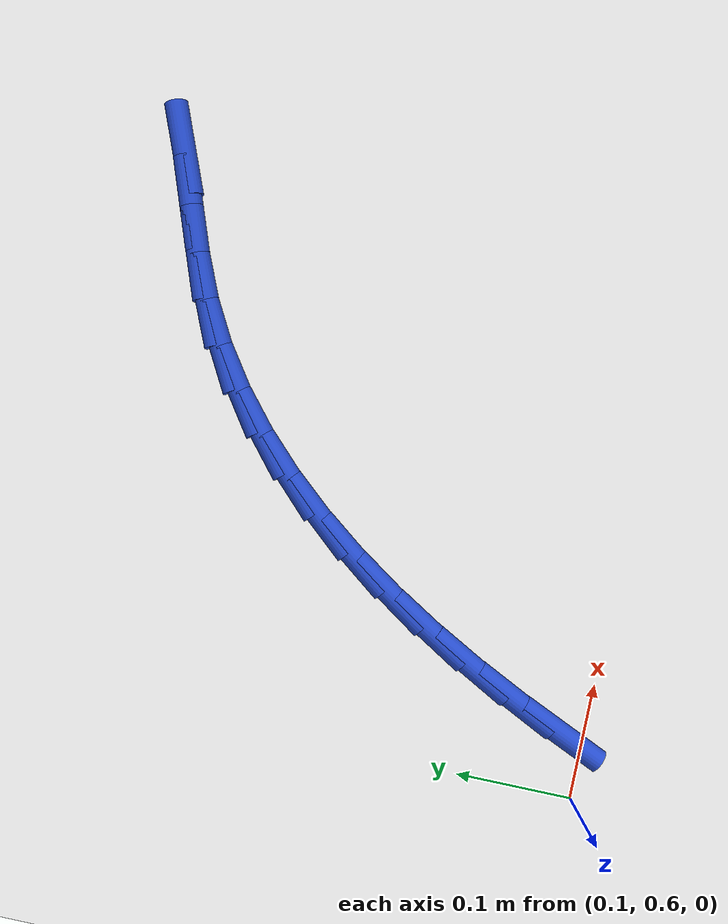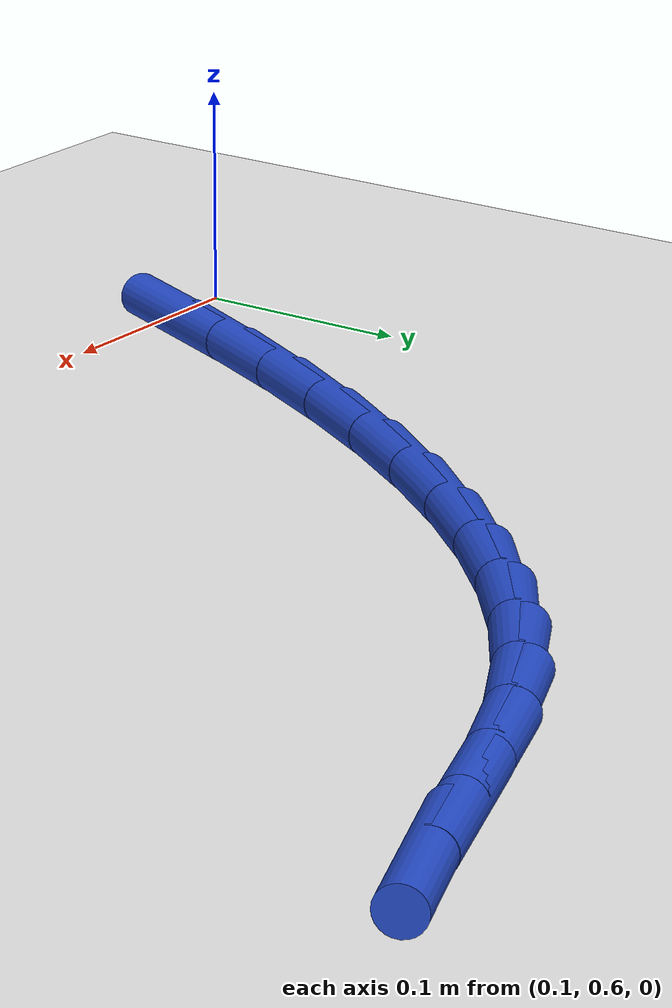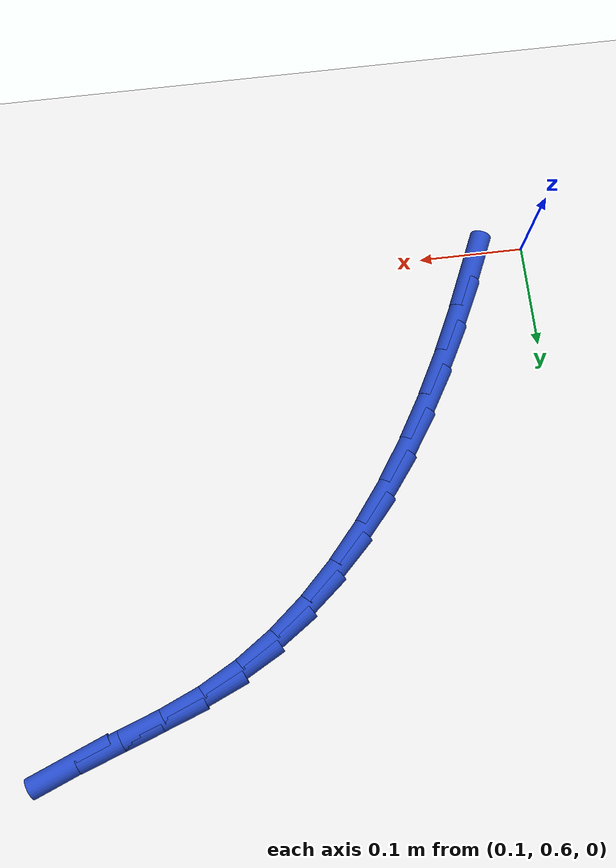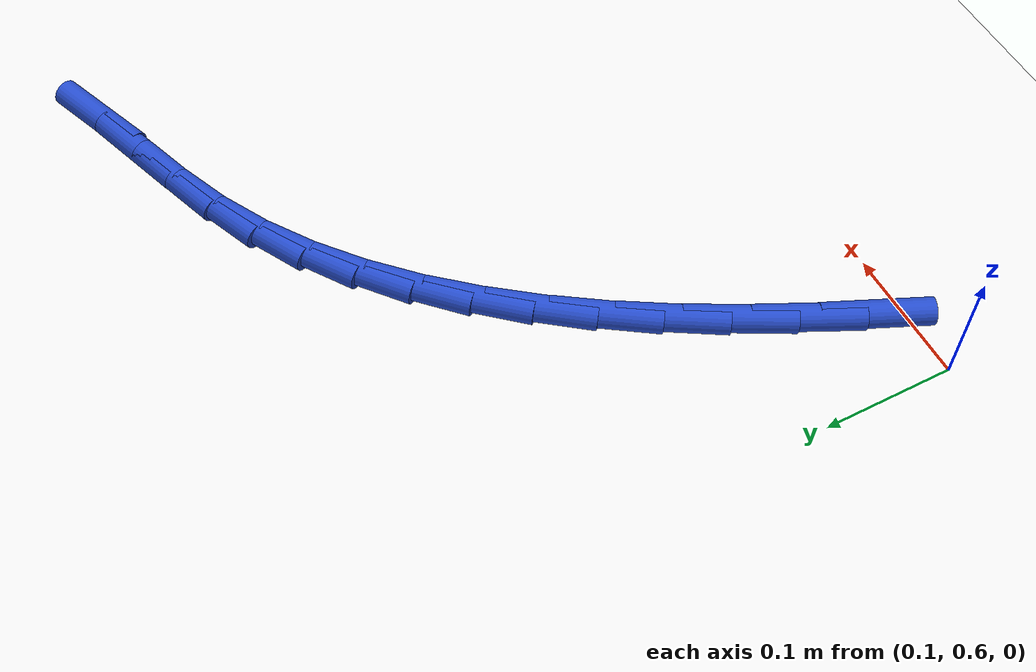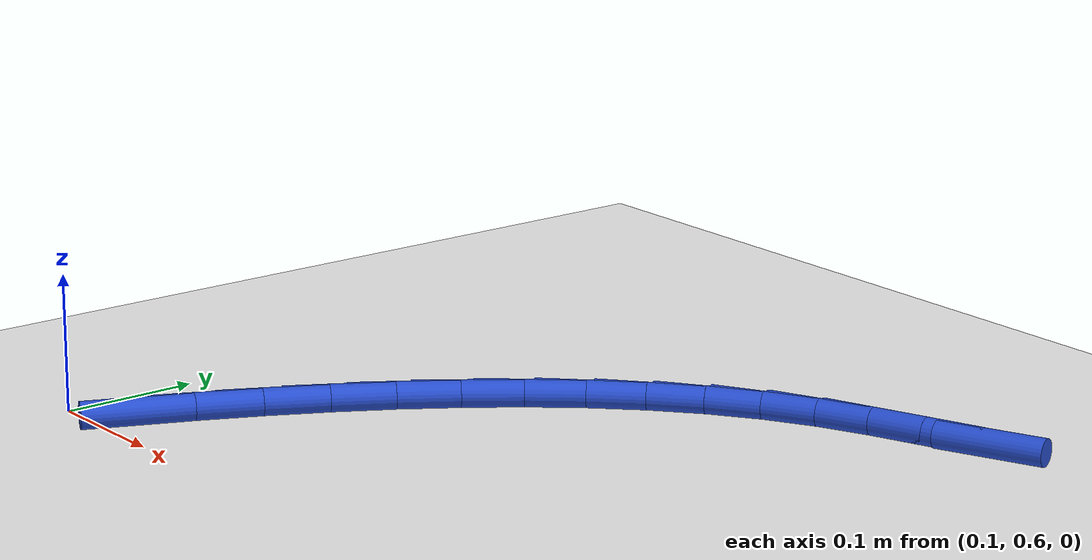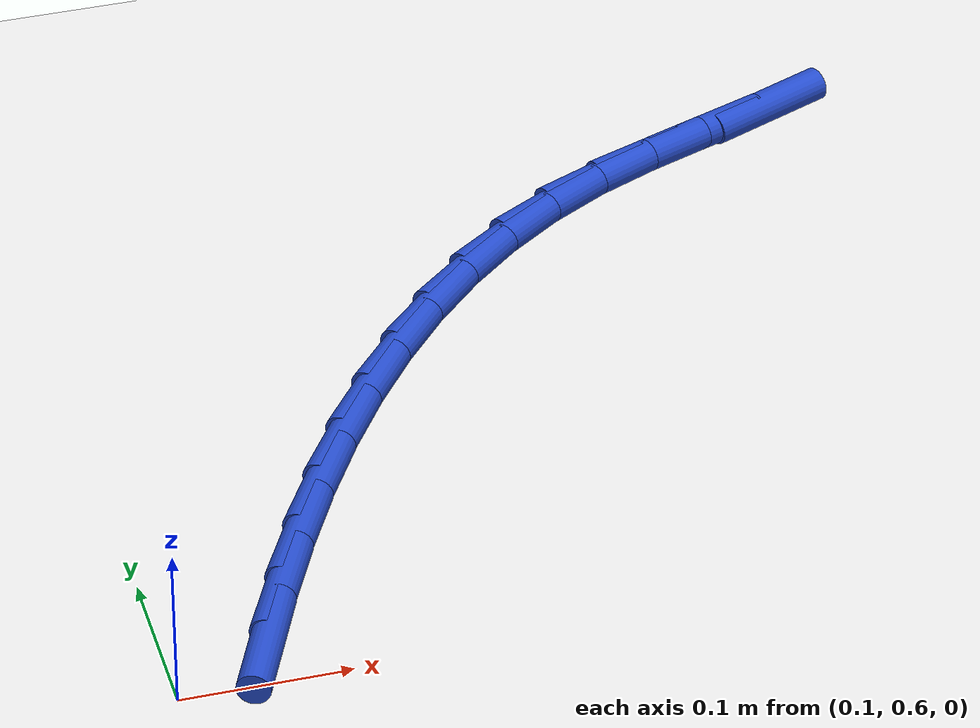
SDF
<sdf version="1.6">
 <world name="default">
  <model name="ground_plane">
   <static>1</static>
   <link name="link">
    <collision name="collision">
     <geometry><plane><normal>0 0 1</normal><size>100 100</size></plane></geometry>
     <surface><friction><ode><mu>100</mu><mu2>50</mu2></ode></friction></surface>
    </collision>
    <visual name="visual">
     <cast_shadows>0</cast_shadows>
     <geometry><plane><normal>0 0 1</normal><size>100 100</size></plane></geometry>
     <material>
      <script><uri>file://media/materials/scripts/gazebo.material</uri><name>Gazebo/WhiteGlow</name></script>
     </material>
    </visual>
   </link>
  </model>
  <model name="line">
   <link name="link_14">
    <pose>0.1557032932175975 0.6224745213254694 0.01 0 1.57 1.1550694259014196</pose>
    <collision name="collision">
     <geometry><cylinder><radius>0.01</radius><length>0.08</length></cylinder></geometry>
    </collision>
    <visual name="visual">
     <material>
      <script><name>Gazebo/Blue</name><uri>file://media/materials/scripts/gazebo.material</uri></script>
     </material>
     <geometry><cylinder><radius>0.01</radius><length>0.08</length></cylinder></geometry>
    </visual>
   </link>
   <link name="link_15">
    <pose>0.175060446691376 0.666322853550728 0.01 0 1.57 1.1200868528925287</pose>
    <collision name="collision">
     <geometry><cylinder><radius>0.01</radius><length>0.08</length></cylinder></geometry>
    </collision>
    <visual name="visual">
     <material>
      <script><name>Gazebo/Blue</name><uri>file://media/materials/scripts/gazebo.material</uri></script>
     </material>
     <geometry><cylinder><radius>0.01</radius><length>0.08</length></cylinder></geometry>
    </visual>
   </link>
   <link name="link_16">
    <pose>0.1956940704689749 0.7089604398861165 0.01 0 1.57 1.080232874510247</pose>
    <collision name="collision">
     <geometry><cylinder><radius>0.01</radius><length>0.08</length></cylinder></geometry>
    </collision>
    <visual name="visual">
     <material>
      <script><name>Gazebo/Blue</name><uri>file://media/materials/scripts/gazebo.material</uri></script>
     </material>
     <geometry><cylinder><radius>0.01</radius><length>0.08</length></cylinder></geometry>
    </visual>
   </link>
   <link name="link_17">
    <pose>0.21767694718571245 0.7501182340592825 0.01 0 1.57 1.034875441462953</pose>
    <collision name="collision">
     <geometry><cylinder><radius>0.01</radius><length>0.08</length></cylinder></geometry>
    </collision>
    <visual name="visual">
     <material>
      <script><name>Gazebo/Blue</name><uri>file://media/materials/scripts/gazebo.material</uri></script>
     </material>
     <geometry><cylinder><radius>0.01</radius><length>0.08</length></cylinder></geometry>
    </visual>
   </link>
   <link name="link_18">
    <pose>0.2410818594769067 0.7895271897978733 0.01 0 1.57 0.9833058500837129</pose>
    <collision name="collision">
     <geometry><cylinder><radius>0.01</radius><length>0.08</length></cylinder></geometry>
    </collision>
    <visual name="visual">
     <material>
      <script><name>Gazebo/Blue</name><uri>file://media/materials/scripts/gazebo.material</uri></script>
     </material>
     <geometry><cylinder><radius>0.01</radius><length>0.08</length></cylinder></geometry>
    </visual>
   </link>
   <link name="link_19">
    <pose>0.2659815899778757 0.8269182608295357 0.01 0 1.57 0.924761746532312</pose>
    <collision name="collision">
     <geometry><cylinder><radius>0.01</radius><length>0.08</length></cylinder></geometry>
    </collision>
    <visual name="visual">
     <material>
      <script><name>Gazebo/Blue</name><uri>file://media/materials/scripts/gazebo.material</uri></script>
     </material>
     <geometry><cylinder><radius>0.01</radius><length>0.08</length></cylinder></geometry>
    </visual>
   </link>
   <link name="link_20">
    <pose>0.2924489213239375 0.8620224008819166 0.01 0 1.57 0.8584750192438121</pose>
    <collision name="collision">
     <geometry><cylinder><radius>0.01</radius><length>0.08</length></cylinder></geometry>
    </collision>
    <visual name="visual">
     <material>
      <script><name>Gazebo/Blue</name><uri>file://media/materials/scripts/gazebo.material</uri></script>
     </material>
     <geometry><cylinder><radius>0.01</radius><length>0.08</length></cylinder></geometry>
    </visual>
   </link>
   <link name="link_21">
    <pose>0.32055663615041013 0.8945705636826639 0.01 0 1.57 0.7837566622476606</pose>
    <collision name="collision">
     <geometry><cylinder><radius>0.01</radius><length>0.08</length></cylinder></geometry>
    </collision>
    <visual name="visual">
     <material>
      <script><name>Gazebo/Blue</name><uri>file://media/materials/scripts/gazebo.material</uri></script>
     </material>
     <geometry><cylinder><radius>0.01</radius><length>0.08</length></cylinder></geometry>
    </visual>
   </link>
   <link name="link_22">
    <pose>0.3503775170926119 0.924293702959424 0.01 0 1.57 0.7001296184476679</pose>
    <collision name="collision">
     <geometry><cylinder><radius>0.01</radius><length>0.08</length></cylinder></geometry>
    </collision>
    <visual name="visual">
     <material>
      <script><name>Gazebo/Blue</name><uri>file://media/materials/scripts/gazebo.material</uri></script>
     </material>
     <geometry><cylinder><radius>0.01</radius><length>0.08</length></cylinder></geometry>
    </visual>
   </link>
   <link name="link_23">
    <pose>0.3819843467858606 0.9509227724398444 0.01 0 1.57 0.6075112259678378</pose>
    <collision name="collision">
     <geometry><cylinder><radius>0.01</radius><length>0.08</length></cylinder></geometry>
    </collision>
    <visual name="visual">
     <material>
      <script><name>Gazebo/Blue</name><uri>file://media/materials/scripts/gazebo.material</uri></script>
     </material>
     <geometry><cylinder><radius>0.01</radius><length>0.08</length></cylinder></geometry>
    </visual>
   </link>
   <link name="link_24">
    <pose>0.4154499078654743 0.9741887258515718 0.01 0 1.57 0.5064236134487557</pose>
    <collision name="collision">
     <geometry><cylinder><radius>0.01</radius><length>0.08</length></cylinder></geometry>
    </collision>
    <visual name="visual">
     <material>
      <script><name>Gazebo/Blue</name><uri>file://media/materials/scripts/gazebo.material</uri></script>
     </material>
     <geometry><cylinder><radius>0.01</radius><length>0.08</length></cylinder></geometry>
    </visual>
   </link>
   <link name="link_25">
    <pose>0.45084698296677145 0.9938225169222539 0.01 0 1.57 0.4067200654186166</pose>
    <collision name="collision">
     <geometry><cylinder><radius>0.01</radius><length>0.08</length></cylinder></geometry>
    </collision>
    <visual name="visual">
     <material>
      <script><name>Gazebo/Blue</name><uri>file://media/materials/scripts/gazebo.material</uri></script>
     </material>
     <geometry><cylinder><radius>0.01</radius><length>0.08</length></cylinder></geometry>
    </visual>
   </link>
   <link name="link_26">
    <pose>0.4883252506182559 1.0099658014967525 0.01 0 1.57 0.3499674653694926</pose>
    <collision name="collision">
     <geometry><cylinder><radius>0.01</radius><length>0.08</length></cylinder></geometry>
    </collision>
    <visual name="visual">
     <material>
      <script><name>Gazebo/Blue</name><uri>file://media/materials/scripts/gazebo.material</uri></script>
     </material>
     <geometry><cylinder><radius>0.01</radius><length>0.08</length></cylinder></geometry>
    </visual>
   </link>
   <link name="link_27">
    <pose>0.5283758405536133 1.0245839314208876 0.01 0 1.57 0.3457436856352865</pose>
    <collision name="collision">
     <geometry><cylinder><radius>0.01</radius><length>0.08</length></cylinder></geometry>
    </collision>
    <visual name="visual">
     <material>
      <script><name>Gazebo/Blue</name><uri>file://media/materials/scripts/gazebo.material</uri></script>
     </material>
     <geometry><cylinder><radius>0.01</radius><length>0.08</length></cylinder></geometry>
    </visual>
   </link>
   <link name="link_28">
    <pose>0.5715846241926494 1.0401482753050366 0.01 0 1.57 0.3837170176790657</pose>
    <collision name="collision">
     <geometry><cylinder><radius>0.01</radius><length>0.08</length></cylinder></geometry>
    </collision>
    <visual name="visual">
     <material>
      <script><name>Gazebo/Blue</name><uri>file://media/materials/scripts/gazebo.material</uri></script>
     </material>
     <geometry><cylinder><radius>0.01</radius><length>0.08</length></cylinder></geometry>
    </visual>
   </link>
  </model>
 </world>
</sdf>
